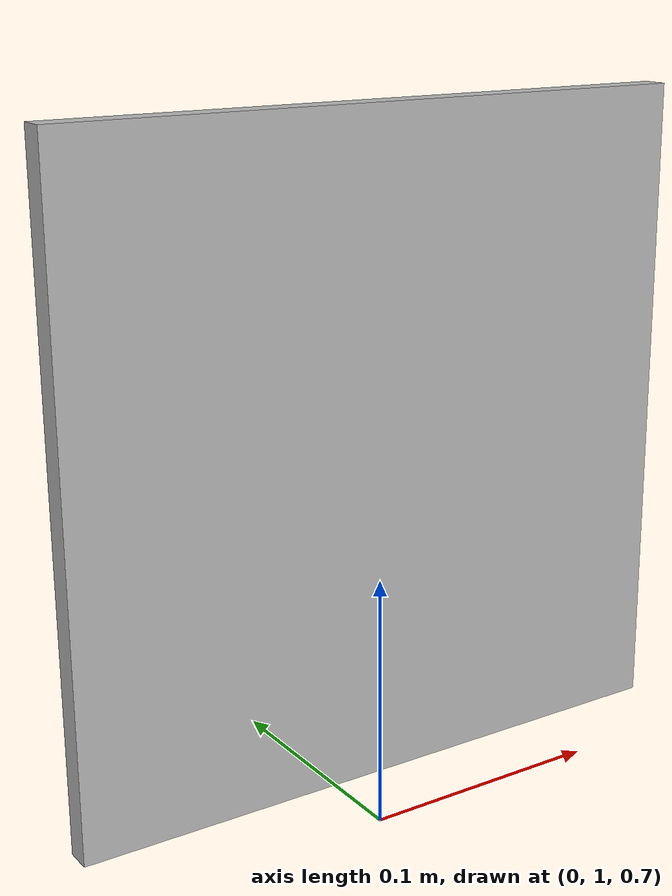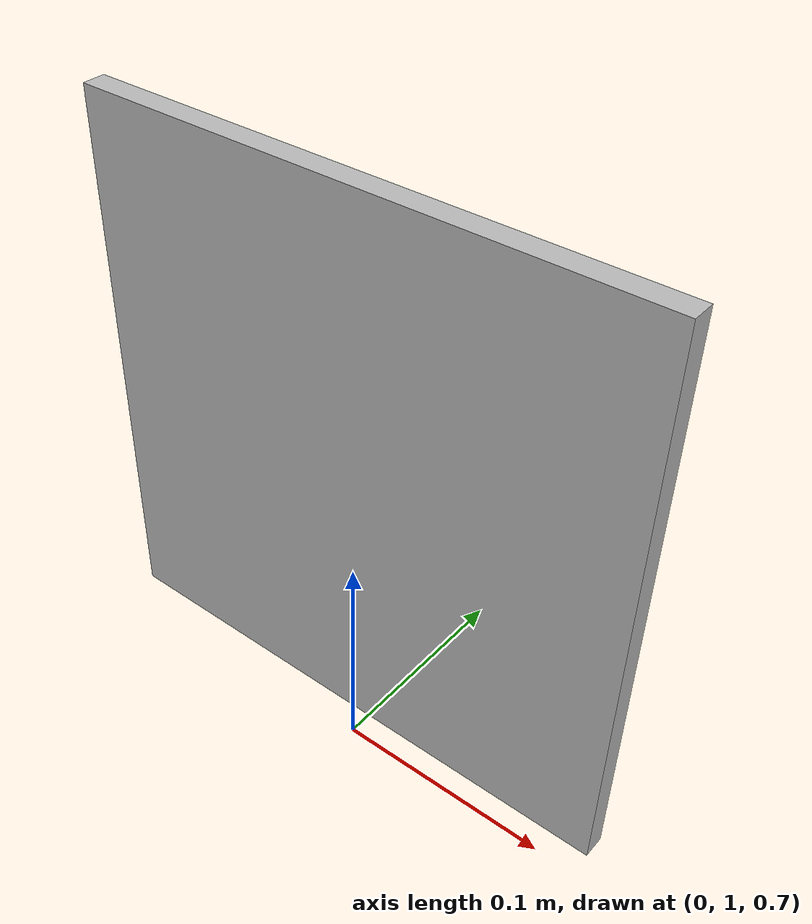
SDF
<?xml version="1.0"?>
<sdf version="1.6">
  <world name="default">

    <include>
      <uri>model://sun</uri>
    </include>

    <include>
      <uri>model://ground_plane</uri>
    </include>

    <!-- Bright, even lighting: high ambient + no shadows keeps the vertical
         marker face well lit (and is cheaper on CPU/software rendering). -->
    <scene>
      <ambient>0.6 0.6 0.6 1</ambient>
      <background>0.7 0.7 0.7 1</background>
      <shadows>false</shadows>
    </scene>

    <!-- Key light angled from the robot side so it falls on the marker's
         -x face rather than grazing it like the top-down sun. -->

    <!-- The marker. -x face points back toward the robot at the origin. -->
    <include>
      <name>aruco_marker</name>
      <uri>model://aruco_marker</uri>
      <pose>0.0 1.0 0.85 0.0 0 1.57</pose>
    </include>

  </world>
</sdf>

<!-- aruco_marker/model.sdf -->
<sdf version="1.6">
  <model name="aruco_marker">
    <static>true</static>
    <link name="link">
      <pose>0 0 0 0 0 0</pose>

      <!-- Thin plate: 1 cm deep, 25 cm square. The large faces are +/-x,
           so the marker is read out of the model's -x face. -->
      <collision name="collision">
        <geometry>
          <box><size>0.01 0.25 0.25</size></box>
        </geometry>
      </collision>

      <visual name="visual">
        <geometry>
          <box><size>0.01 0.25 0.25</size></box>
        </geometry>
        <material>
          <script>
            <uri>model://aruco_marker/materials/scripts</uri>
            <uri>model://aruco_marker/materials/textures</uri>
            <name>ArucoMarker/Marker</name>
          </script>
        </material>
      </visual>
    </link>
  </model>
</sdf>
